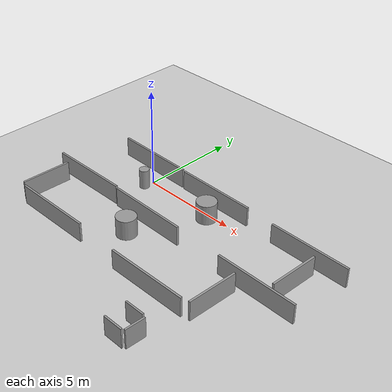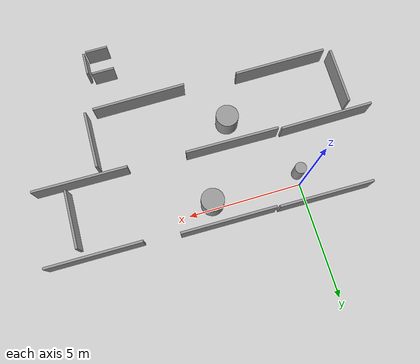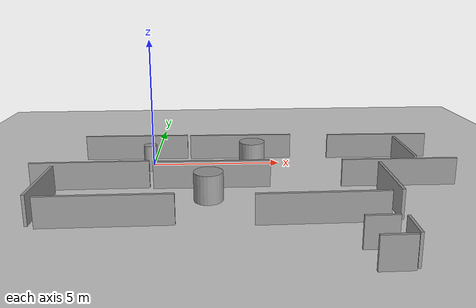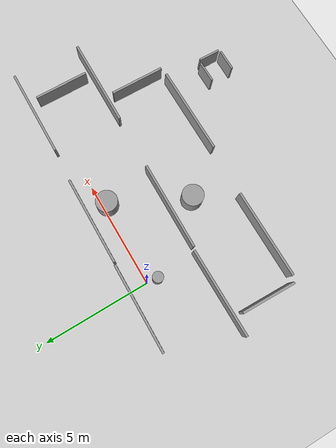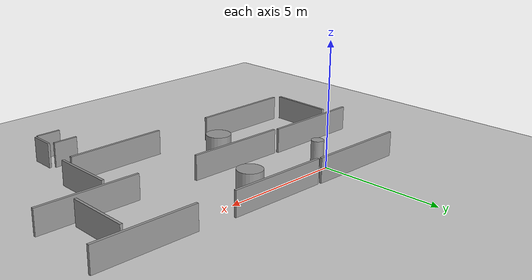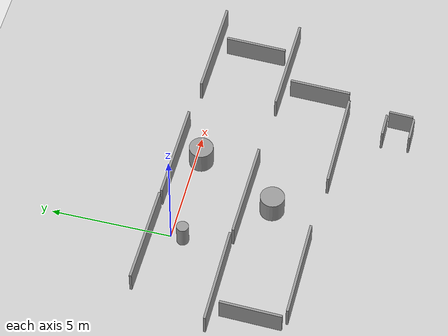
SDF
<sdf version="1.7">
 <world name="default">
  <model name="ground_plane">
   <static>1</static>
   <link name="link">
    <collision name="collision">
     <geometry><plane><normal>0 0 1</normal><size>100 100</size></plane></geometry>
     <surface><friction><ode><mu>100</mu><mu2>50</mu2></ode></friction></surface>
    </collision>
    <visual name="visual">
     <cast_shadows>0</cast_shadows>
     <geometry><plane><normal>0 0 1</normal><size>100 100</size></plane></geometry>
     <material>
      <script><uri>file://media/materials/scripts/gazebo.material</uri><name>Gazebo/Grey</name></script>
     </material>
    </visual>
   </link>
  </model>
  <light name="sun" type="directional">
   <pose>0 0 10 0 -0 0</pose>
   <diffuse>0.8 0.8 0.8 1</diffuse>
   <specular>0.2 0.2 0.2 1</specular>
   <attenuation>
    <range>1000</range>
    <constant>0.9</constant>
    <linear>0.01</linear>
    <quadratic>0.001</quadratic>
   </attenuation>
   <direction>-0.5 0.1 -0.9</direction>
   <spot><inner_angle>0</inner_angle><outer_angle>0</outer_angle><falloff>0</falloff></spot>
  </light>
  <scene><shadows>0</shadows><ambient>0.4 0.4 0.4 1</ambient><background>0.7 0.7 0.7 1</background></scene>
  <physics type="ode">
   <real_time_update_rate>1000</real_time_update_rate>
   <max_step_size>0.001</max_step_size>
   <real_time_factor>1</real_time_factor>
   <ode>
    <solver>
     <type>quick</type>
     <iters>150</iters>
     <precon_iters>0</precon_iters>
     <sor>1.4</sor>
     <use_dynamic_moi_rescaling>1</use_dynamic_moi_rescaling>
    </solver>
    <constraints>
     <cfm>1e-05</cfm>
     <erp>0.2</erp>
     <contact_max_correcting_vel>2000</contact_max_correcting_vel>
     <contact_surface_layer>0.01</contact_surface_layer>
    </constraints>
   </ode>
  </physics>
  <gravity>0 0 -9.8</gravity>
  <magnetic_field>6e-06 2.3e-05 -4.2e-05</magnetic_field>
  <atmosphere type="adiabatic"/>
  <audio><device>default</device></audio>
  <spherical_coordinates>
   <surface_model>EARTH_WGS84</surface_model>
   <latitude_deg>0</latitude_deg>
   <longitude_deg>0</longitude_deg>
   <elevation>0</elevation>
   <heading_deg>0</heading_deg>
  </spherical_coordinates>
  <model name="unit_cylinder">
   <pose>-0.060293 -0.505904 0.499996 0 -1e-06 0</pose>
   <link name="link">
    <inertial>
     <mass>1</mass>
     <inertia><ixx>0.145833</ixx><ixy>0</ixy><ixz>0</ixz><iyy>0.145833</iyy><iyz>0</iyz><izz>0.125</izz></inertia>
    </inertial>
    <collision name="collision">
     <geometry><cylinder><radius>0.250236</radius><length>1</length></cylinder></geometry>
    </collision>
    <visual name="visual">
     <geometry><cylinder><radius>0.250236</radius><length>1</length></cylinder></geometry>
     <material>
      <script><name>Gazebo/Grey</name><uri>file://media/materials/scripts/gazebo.material</uri></script>
     </material>
    </visual>
   </link>
  </model>
  <model name="unit_cylinder_0">
   <pose>3.9128 -0.243775 0.499997 -3e-06 -3e-06 0</pose>
   <link name="link">
    <inertial>
     <mass>1</mass>
     <inertia><ixx>0.145833</ixx><ixy>0</ixy><ixz>0</ixz><iyy>0.145833</iyy><iyz>0</iyz><izz>0.125</izz></inertia>
    </inertial>
    <collision name="collision">
     <geometry><cylinder><radius>0.5</radius><length>1</length></cylinder></geometry>
    </collision>
    <visual name="visual">
     <geometry><cylinder><radius>0.5</radius><length>1</length></cylinder></geometry>
     <material>
      <script><name>Gazebo/Grey</name><uri>file://media/materials/scripts/gazebo.material</uri></script>
     </material>
    </visual>
   </link>
  </model>
  <model name="unit_box_clone_1_clone">
   <pose>5.71073 -5.62253 0.49911 -7e-06 -0.000429 0.00308</pose>
   <link name="link">
    <inertial>
     <mass>1</mass>
     <inertia>
      <ixx>0.166667</ixx>
      <ixy>0</ixy>
      <ixz>0</ixz>
      <iyy>0.166667</iyy>
      <iyz>0</iyz>
      <izz>0.166667</izz>
     </inertia>
    </inertial>
    <collision name="collision"><geometry><box><size>4.15097 0.102126 1</size></box></geometry></collision>
    <visual name="visual">
     <geometry><box><size>4.15097 0.102126 1</size></box></geometry>
     <material>
      <script><name>Gazebo/Grey</name><uri>file://media/materials/scripts/gazebo.material</uri></script>
     </material>
    </visual>
   </link>
  </model>
  <model name="unit_box_0">
   <pose>6.93177 -7.29569 0.5 -3e-06 -0 -1.6e-05</pose>
   <link name="link">
    <inertial>
     <mass>1</mass>
     <inertia>
      <ixx>0.166667</ixx>
      <ixy>0</ixy>
      <ixz>0</ixz>
      <iyy>0.166667</iyy>
      <iyz>0</iyz>
      <izz>0.166667</izz>
     </inertia>
    </inertial>
    <collision name="collision"><geometry><box><size>1 0.087194 1</size></box></geometry></collision>
    <visual name="visual">
     <geometry><box><size>1 0.087194 1</size></box></geometry>
     <material>
      <script><name>Gazebo/Grey</name><uri>file://media/materials/scripts/gazebo.material</uri></script>
     </material>
    </visual>
   </link>
  </model>
  <model name="unit_box_0_clone">
   <pose>6.97992 -8.41941 0.5 4e-06 -0 -9e-06</pose>
   <link name="link">
    <inertial>
     <mass>1</mass>
     <inertia>
      <ixx>0.166667</ixx>
      <ixy>0</ixy>
      <ixz>0</ixz>
      <iyy>0.166667</iyy>
      <iyz>0</iyz>
      <izz>0.166667</izz>
     </inertia>
    </inertial>
    <collision name="collision"><geometry><box><size>1 0.087195 1</size></box></geometry></collision>
    <visual name="visual">
     <geometry><box><size>1 0.087195 1</size></box></geometry>
     <material>
      <script><name>Gazebo/Grey</name><uri>file://media/materials/scripts/gazebo.material</uri></script>
     </material>
    </visual>
   </link>
  </model>
  <model name="unit_box_0_clone_0">
   <pose>7.59648 -7.86251 0.5 2e-06 -0 -1.60355</pose>
   <link name="link">
    <inertial>
     <mass>1</mass>
     <inertia>
      <ixx>0.166667</ixx>
      <ixy>0</ixy>
      <ixz>0</ixz>
      <iyy>0.166667</iyy>
      <iyz>0</iyz>
      <izz>0.166667</izz>
     </inertia>
    </inertial>
    <collision name="collision"><geometry><box><size>1 0.087195 1</size></box></geometry></collision>
    <visual name="visual">
     <geometry><box><size>1 0.087195 1</size></box></geometry>
     <material>
      <script><name>Gazebo/Grey</name><uri>file://media/materials/scripts/gazebo.material</uri></script>
     </material>
    </visual>
   </link>
  </model>
  <model name="unit_box_clone_1_clone_clone">
   <pose>2.33932 -2.53062 0.49911 7e-06 -0.000429 -0.015705</pose>
   <link name="link">
    <inertial>
     <mass>1</mass>
     <inertia>
      <ixx>0.166667</ixx>
      <ixy>0</ixy>
      <ixz>0</ixz>
      <iyy>0.166667</iyy>
      <iyz>0</iyz>
      <izz>0.166667</izz>
     </inertia>
    </inertial>
    <collision name="collision"><geometry><box><size>4.15097 0.102126 1</size></box></geometry></collision>
    <visual name="visual">
     <geometry><box><size>4.15097 0.102126 1</size></box></geometry>
     <material>
      <script><name>Gazebo/Grey</name><uri>file://media/materials/scripts/gazebo.material</uri></script>
     </material>
    </visual>
   </link>
  </model>
  <model name="unit_box_clone_1_clone_clone_0">
   <pose>9.04764 -2.68668 0.49911 7e-06 -0.000429 -0.015705</pose>
   <link name="link">
    <inertial>
     <mass>1</mass>
     <inertia>
      <ixx>0.166667</ixx>
      <ixy>0</ixy>
      <ixz>0</ixz>
      <iyy>0.166667</iyy>
      <iyz>0</iyz>
      <izz>0.166667</izz>
     </inertia>
    </inertial>
    <collision name="collision"><geometry><box><size>4.15097 0.102126 1</size></box></geometry></collision>
    <visual name="visual">
     <geometry><box><size>4.15097 0.102126 1</size></box></geometry>
     <material>
      <script><name>Gazebo/Grey</name><uri>file://media/materials/scripts/gazebo.material</uri></script>
     </material>
    </visual>
   </link>
  </model>
  <model name="unit_box_clone_1_clone_clone_1">
   <pose>-0.764045 0.850502 0.49911 7e-06 -0.000429 -0.015702</pose>
   <link name="link">
    <inertial>
     <mass>1</mass>
     <inertia>
      <ixx>0.166667</ixx>
      <ixy>0</ixy>
      <ixz>0</ixz>
      <iyy>0.166667</iyy>
      <iyz>0</iyz>
      <izz>0.166667</izz>
     </inertia>
    </inertial>
    <collision name="collision"><geometry><box><size>4.15097 0.102126 1</size></box></geometry></collision>
    <visual name="visual">
     <geometry><box><size>4.15097 0.102126 1</size></box></geometry>
     <material>
      <script><name>Gazebo/Grey</name><uri>file://media/materials/scripts/gazebo.material</uri></script>
     </material>
    </visual>
   </link>
  </model>
  <model name="unit_box_clone_1_clone_clone_2">
   <pose>3.5042 0.747001 0.49911 7e-06 -0.000429 -0.015705</pose>
   <link name="link">
    <inertial>
     <mass>1</mass>
     <inertia>
      <ixx>0.166667</ixx>
      <ixy>0</ixy>
      <ixz>0</ixz>
      <iyy>0.166667</iyy>
      <iyz>0</iyz>
      <izz>0.166667</izz>
     </inertia>
    </inertial>
    <collision name="collision"><geometry><box><size>4.15097 0.102126 1</size></box></geometry></collision>
    <visual name="visual">
     <geometry><box><size>4.15097 0.102126 1</size></box></geometry>
     <material>
      <script><name>Gazebo/Grey</name><uri>file://media/materials/scripts/gazebo.material</uri></script>
     </material>
    </visual>
   </link>
  </model>
  <model name="unit_box_clone_1_clone_clone_3">
   <pose>9.19825 0.559745 0.49911 -7e-06 0.000429 -0.015705</pose>
   <link name="link">
    <inertial>
     <mass>1</mass>
     <inertia>
      <ixx>0.166667</ixx>
      <ixy>0</ixy>
      <ixz>0</ixz>
      <iyy>0.166667</iyy>
      <iyz>0</iyz>
      <izz>0.166667</izz>
     </inertia>
    </inertial>
    <collision name="collision"><geometry><box><size>4.15097 0.102126 1</size></box></geometry></collision>
    <visual name="visual">
     <geometry><box><size>4.15097 0.102126 1</size></box></geometry>
     <material>
      <script><name>Gazebo/Grey</name><uri>file://media/materials/scripts/gazebo.material</uri></script>
     </material>
    </visual>
   </link>
  </model>
  <model name="unit_box_clone_1_clone_clone_4">
   <pose>9.76539 -1.13276 0.49993 -1e-06 5.5e-05 1.5472</pose>
   <link name="link">
    <inertial>
     <mass>1</mass>
     <inertia>
      <ixx>0.166667</ixx>
      <ixy>0</ixy>
      <ixz>0</ixz>
      <iyy>0.166667</iyy>
      <iyz>0</iyz>
      <izz>0.166667</izz>
     </inertia>
    </inertial>
    <collision name="collision"><geometry><box><size>2.54757 0.102126 1</size></box></geometry></collision>
    <visual name="visual">
     <geometry><box><size>2.54757 0.102126 1</size></box></geometry>
     <material>
      <script><name>Gazebo/Grey</name><uri>file://media/materials/scripts/gazebo.material</uri></script>
     </material>
    </visual>
   </link>
  </model>
  <model name="unit_box_clone_1_clone_clone_4_clone">
   <pose>8.18964 -4.28461 0.49993 -1e-06 5.5e-05 1.54719</pose>
   <link name="link">
    <inertial>
     <mass>1</mass>
     <inertia>
      <ixx>0.166667</ixx>
      <ixy>0</ixy>
      <ixz>0</ixz>
      <iyy>0.166667</iyy>
      <iyz>0</iyz>
      <izz>0.166667</izz>
     </inertia>
    </inertial>
    <collision name="collision"><geometry><box><size>2.54757 0.102126 1</size></box></geometry></collision>
    <visual name="visual">
     <geometry><box><size>2.54757 0.102126 1</size></box></geometry>
     <material>
      <script><name>Gazebo/Grey</name><uri>file://media/materials/scripts/gazebo.material</uri></script>
     </material>
    </visual>
   </link>
  </model>
  <model name="unit_box_clone_1_clone_clone_5">
   <pose>-1.94757 -2.4305 0.49911 -7e-06 -0.000429 0.003056</pose>
   <link name="link">
    <inertial>
     <mass>1</mass>
     <inertia>
      <ixx>0.166667</ixx>
      <ixy>0</ixy>
      <ixz>0</ixz>
      <iyy>0.166667</iyy>
      <iyz>0</iyz>
      <izz>0.166667</izz>
     </inertia>
    </inertial>
    <collision name="collision"><geometry><box><size>4.15097 0.102126 1</size></box></geometry></collision>
    <visual name="visual">
     <geometry><box><size>4.15097 0.102126 1</size></box></geometry>
     <material>
      <script><name>Gazebo/Grey</name><uri>file://media/materials/scripts/gazebo.material</uri></script>
     </material>
    </visual>
   </link>
  </model>
  <model name="unit_box_clone_1_clone_clone_6">
   <pose>-0.828248 -5.48175 0.49911 7e-06 0.000429 0.000985</pose>
   <link name="link">
    <inertial>
     <mass>1</mass>
     <inertia>
      <ixx>0.166667</ixx>
      <ixy>0</ixy>
      <ixz>0</ixz>
      <iyy>0.166667</iyy>
      <iyz>0</iyz>
      <izz>0.166667</izz>
     </inertia>
    </inertial>
    <collision name="collision"><geometry><box><size>4.15097 0.102126 1</size></box></geometry></collision>
    <visual name="visual">
     <geometry><box><size>4.15097 0.102126 1</size></box></geometry>
     <material>
      <script><name>Gazebo/Grey</name><uri>file://media/materials/scripts/gazebo.material</uri></script>
     </material>
    </visual>
   </link>
  </model>
  <model name="unit_box_clone_1_clone_clone_4_clone_clone">
   <pose>-3.15584 -4.08192 0.49993 -1e-06 5.5e-05 1.54719</pose>
   <link name="link">
    <inertial>
     <mass>1</mass>
     <inertia>
      <ixx>0.166667</ixx>
      <ixy>0</ixy>
      <ixz>0</ixz>
      <iyy>0.166667</iyy>
      <iyz>0</iyz>
      <izz>0.166667</izz>
     </inertia>
    </inertial>
    <collision name="collision"><geometry><box><size>2.54757 0.102126 1</size></box></geometry></collision>
    <visual name="visual">
     <geometry><box><size>2.54757 0.102126 1</size></box></geometry>
     <material>
      <script><name>Gazebo/Grey</name><uri>file://media/materials/scripts/gazebo.material</uri></script>
     </material>
    </visual>
   </link>
  </model>
  <model name="unit_cylinder_1">
   <pose>2.22538 -3.65488 0.499997 -4e-06 -4e-06 -0</pose>
   <link name="link">
    <inertial>
     <mass>1</mass>
     <inertia><ixx>0.145833</ixx><ixy>0</ixy><ixz>0</ixz><iyy>0.145833</iyy><iyz>0</iyz><izz>0.125</izz></inertia>
    </inertial>
    <collision name="collision">
     <geometry><cylinder><radius>0.5</radius><length>1</length></cylinder></geometry>
    </collision>
    <visual name="visual">
     <geometry><cylinder><radius>0.5</radius><length>1</length></cylinder></geometry>
     <material>
      <script><name>Gazebo/Grey</name><uri>file://media/materials/scripts/gazebo.material</uri></script>
     </material>
    </visual>
   </link>
  </model>
 </world>
</sdf>
